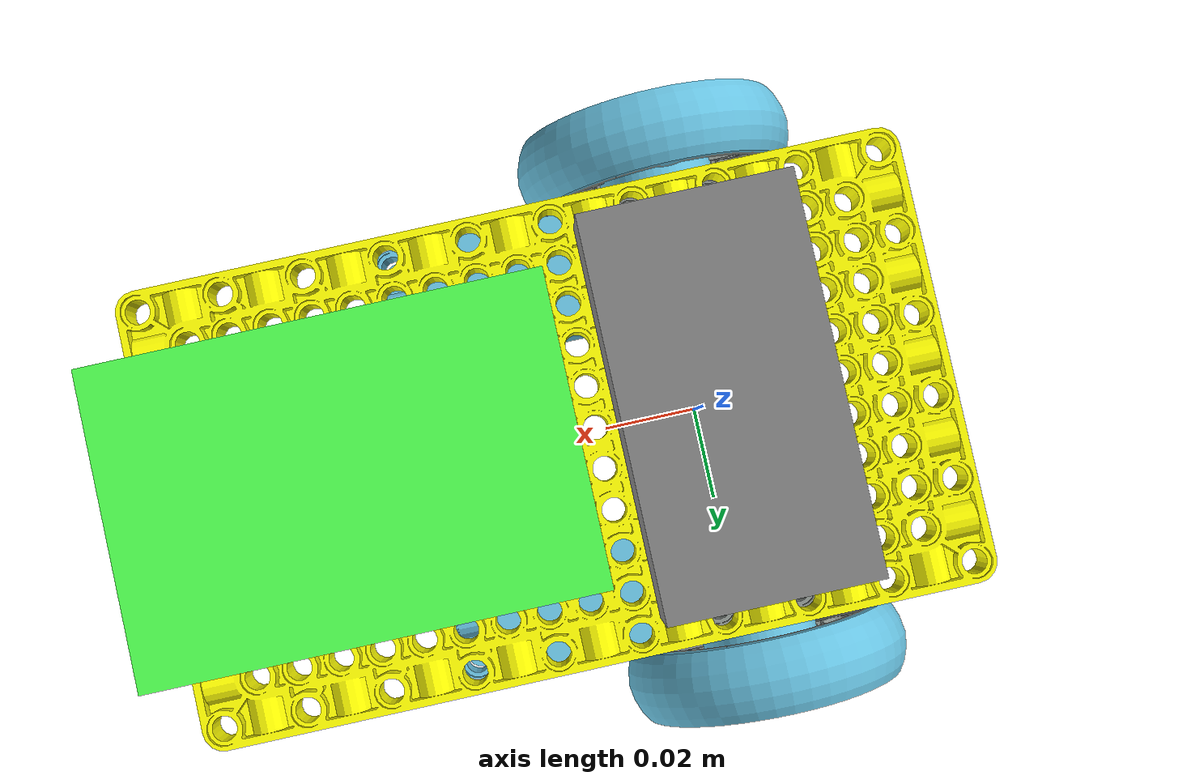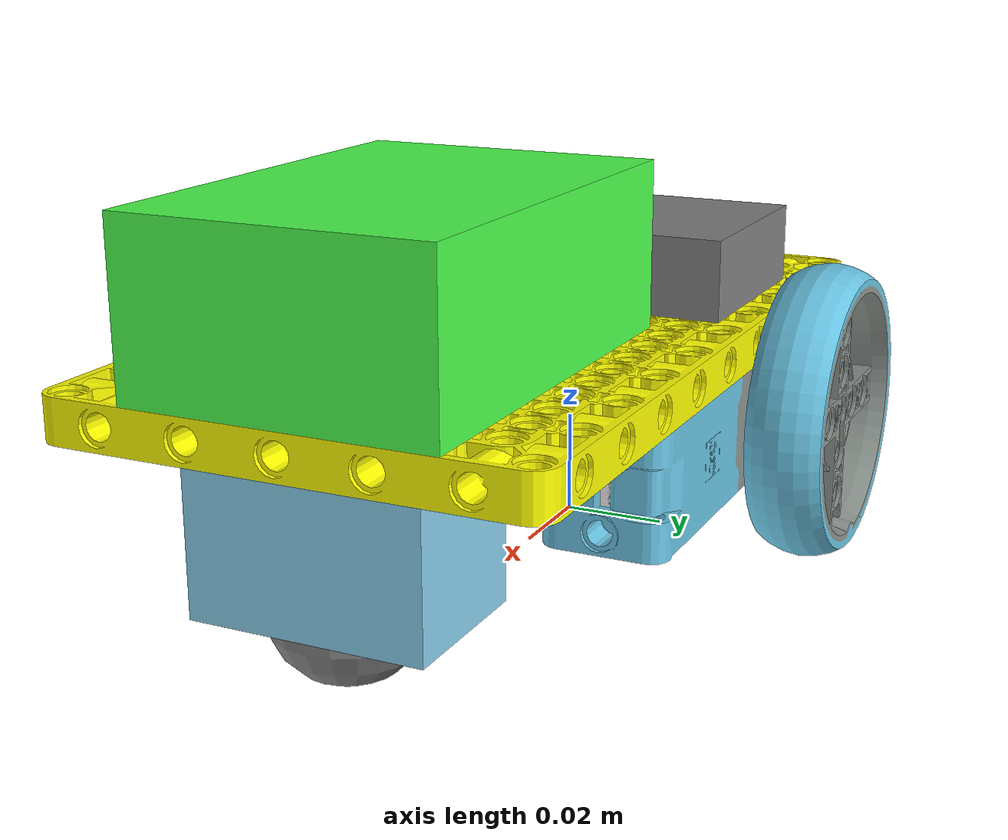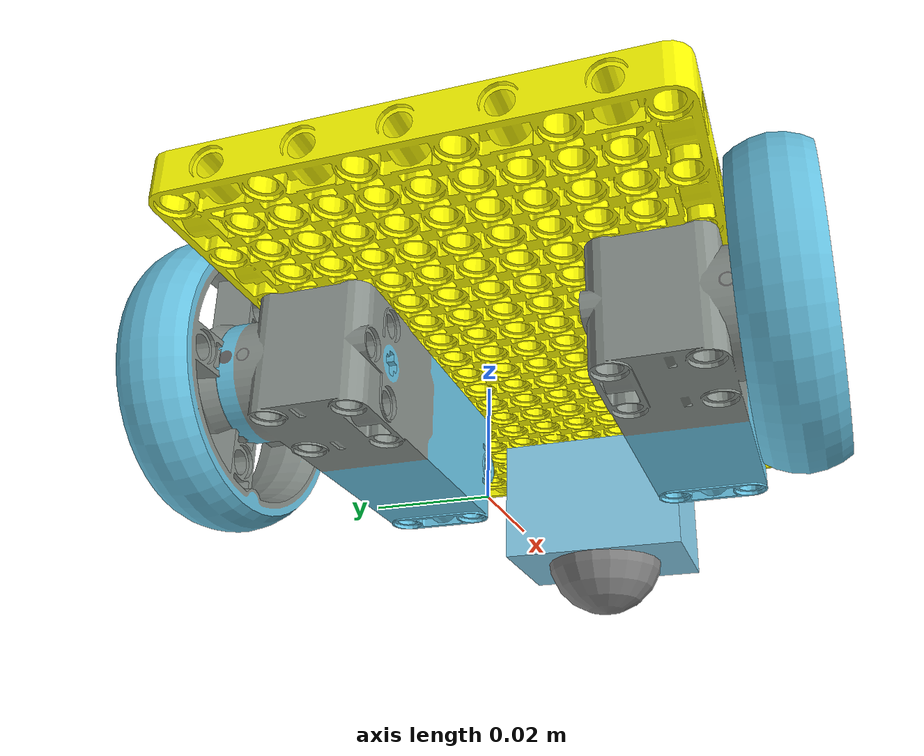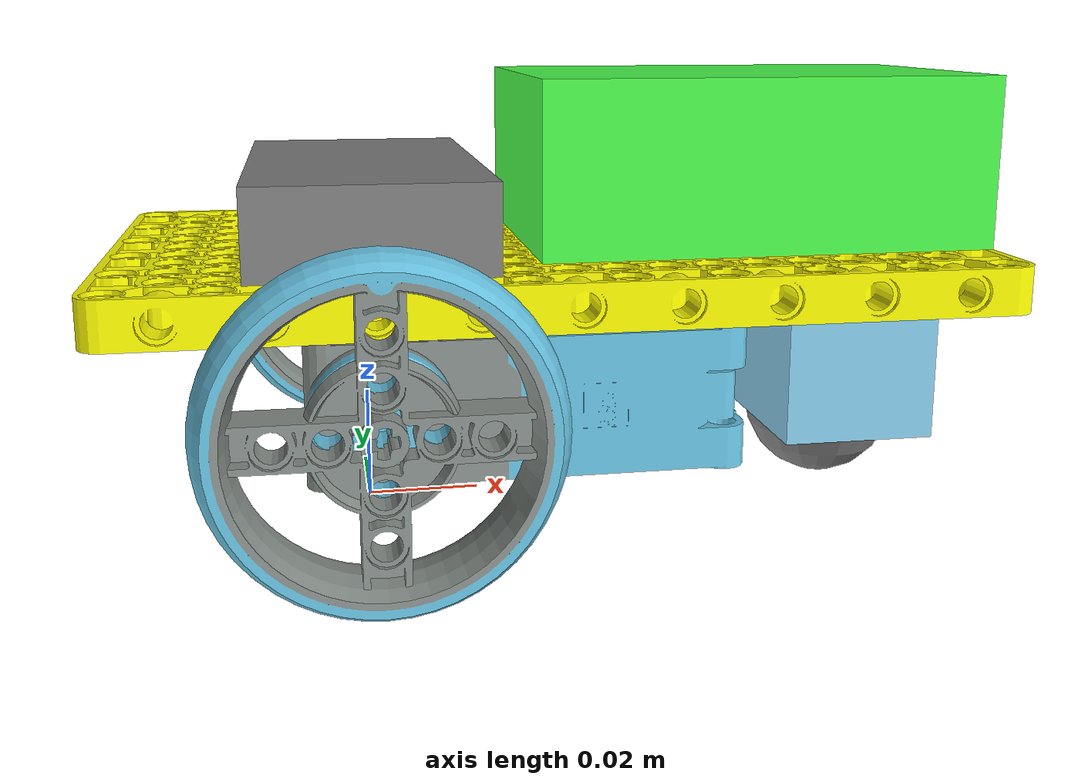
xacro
<?xml version="1.0"?>
<robot name="lego_diffdrive" xmlns:xacro="http://www.ros.org/wiki/xacro">

    <xacro:arg name="namespace"        default=""/>
    <xacro:property name="namespace"   value="$(arg namespace)"/>

    <xacro:arg name="setup"        default="gz"/>
    <xacro:property name="setup"   value="$(arg setup)"/>

    <xacro:arg name="pkg_prefix"        default=""/>
    <xacro:property name="pkg_prefix"   value="$(arg pkg_prefix)"/>

    <xacro:include filename="body/common_properties.xacro" />
    <xacro:include filename="body/mobile_base.xacro" />

    <!-- simulation with ros2_control: controller manager runs inside gazebo -->
    <xacro:if value="${setup == 'gz'}">
        <xacro:include filename="control/ros2_gz_control.xacro" />
    </xacro:if>

    <!-- real hardware with ros2_control: build hat hardware interface -->
    <xacro:if value="${setup == 'hw'}">
        <xacro:arg name="serial_port"        default="/dev/ttyAMA0"/>
        <xacro:property name="serial_port"   value="$(arg serial_port)"/>

        <xacro:include filename="control/ros2_hw_control.xacro" />
    </xacro:if>

</robot>

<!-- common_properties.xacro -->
<robot xmlns:xacro="http://www.ros.org/wiki/xacro">

    <xacro:property name="plate_mass" value="0.010" />
    <xacro:property name="plate_length" value="0.152" />
    <xacro:property name="plate_width" value="0.088" />
    <xacro:property name="plate_height" value="0.008" />
    <xacro:property name="plate_offset_z" value="0.012" />
    <xacro:property name="plate_offset_x" value="0.032" />
    <xacro:property name="caster_wheel_offset" value="0.088" />
    <xacro:property name="wheel_mass" value="0.010" />
    <xacro:property name="wheel_radius" value="0.028" />
    <xacro:property name="wheel_length" value="0.014" />
    <xacro:property name="caster_mass" value="0.002" />
    <xacro:property name="caster_radius" value="${wheel_radius/2}" />
    <xacro:property name="motor_mass" value="0.075" />
    <xacro:property name="motor_wheel_offset_x" value="0.0195" />
    <xacro:property name="motor_wheel_offset_y" value="0.008" />
    <xacro:property name="motor_length" value="0.071" />
    <xacro:property name="motor_width" value="0.023" />
    <xacro:property name="motor_height" value="0.023" />
    <xacro:property name="pi_mass" value="0.050" />
    <xacro:property name="pi_length" value="0.080" />
    <xacro:property name="pi_width" value="0.055" />
    <xacro:property name="pi_height" value="0.030" />
    <xacro:property name="battery_mass" value="0.050" />
    <xacro:property name="battery_length" value="0.040" />
    <xacro:property name="battery_width" value="0.075" />
    <xacro:property name="battery_height" value="0.015" />

    <material name="blue">
        <color rgba="0 0 0.5 1" />
    </material>

    <material name="grey">
        <color rgba="0.5 0.5 0.5 1" />
    </material>

    <material name="yellow">
        <color rgba="1 1 0 1" />
    </material>

    <material name="green">
        <color rgba="0.3 1 0.3 1" />
    </material>

    <material name="sky_blue">
        <color rgba="0.529 0.808 0.922 1" />
    </material>

    <xacro:macro name="box_inertia" params="mass length width height">
        <inertia
            ixx="${mass / 12.0 * (length*length + height*height)}"
            iyy="${mass / 12.0 * (height*height + width*width)}"
            izz="${mass / 12.0 * (width*width   + length*length)}"
            ixy="0.0" ixz="0.0" iyz="0.0" />
    </xacro:macro>

    <xacro:macro name="surface_friction" params="link mu1 mu2">
        <gazebo reference="${link}">
            <mu1>${mu1}</mu1>
            <mu2>${mu2}</mu2>
        </gazebo>
    </xacro:macro>

</robot>

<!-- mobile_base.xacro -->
<robot xmlns:xacro="http://www.ros.org/wiki/xacro">

    <link name="base_link" />
    <link name="center_link">
        <inertial name="center_link_inertia">
            <mass value="0.0" />
            <inertia ixx="0.0" iyy="0.0" izz="0.0"
                     ixy="0.0" ixz="0.0" iyz="0.0" />
        </inertial>
    </link>

    <link name="plate_link">
        <visual>
            <geometry>
                <!--The base plate mesh is 7MB - we could save on ressources by just using a featureless plate instead-->
                <mesh filename="package://${pkg_prefix}_description/meshes/lego/plate_11x19x1.dae" scale="1 1 1" />
                <!-- Width and length flipped here? -->
            </geometry>
            <origin xyz="0 0 ${plate_height / 2.0}" rpy="0 0 ${pi / 2.0}" />
            <material name="yellow" />
        </visual>
        <collision>
            <geometry>
                <box size="${plate_length} ${plate_width} ${plate_height}" />
            </geometry>
        </collision>
        <inertial name="plate_link_inertia">
            <mass value="${plate_mass}" />
            <xacro:box_inertia mass="${plate_mass}" length="${plate_length}" width="${plate_width}" height="${plate_height}" />
            <origin xyz="0 0 ${plate_height / 2.0}" />
        </inertial>
    </link>

    <link name="pi_link">
        <visual>
            <geometry>
                <box size="${pi_length} ${pi_width} ${pi_height}" />
            </geometry>
            <material name="green" />
        </visual>
        <collision>
            <geometry>
                <box size="${pi_length} ${pi_width} ${pi_height}" />
            </geometry>
        </collision>
        <inertial name="pi_link_inertia">
            <mass value="${pi_mass}" />
            <xacro:box_inertia mass="${pi_mass}" length="${pi_length}" width="${pi_width}" height="${pi_height}" />
        </inertial>
    </link>

    <link name="battery_link">
        <visual>
            <geometry>
                <box size="${battery_length} ${battery_width} ${battery_height}" />
            </geometry>
            <material name="grey" />
        </visual>
        <collision>
            <geometry>
                <box size="${battery_length} ${battery_width} ${battery_height}" />
            </geometry>
        </collision>
        <inertial name="battery_link_inertia">
            <mass value="${battery_mass}" />
            <xacro:box_inertia mass="${battery_mass}" length="${battery_length}" width="${battery_width}" height="${battery_height}" />
        </inertial>
    </link>

    <link name="caster_housing_link">
        <visual>
            <geometry>
                <box size="${wheel_radius} ${wheel_radius * 1.5} ${wheel_radius}" />
            </geometry>
            <material name="sky_blue" />
            <origin xyz="0 0 -${wheel_radius/2.0}" rpy="0 0 0" />
        </visual>
    </link>

    <link name="caster_wheel_link">
        <visual>
            <geometry>
                <sphere radius="${caster_radius}" />
            </geometry>
            <material name="grey" />
        </visual>
        <collision>
            <geometry>
                <sphere radius="${caster_radius}" />
            </geometry>
        </collision>
        <inertial name="caster_wheel_link_inertia">
            <mass value="${caster_mass}" />
            <inertia
                ixx="${2.0/5.0 * caster_mass * caster_radius*caster_radius}"
                iyy="${2.0/5.0 * caster_mass * caster_radius*caster_radius}"
                izz="${2.0/5.0 * caster_mass * caster_radius*caster_radius}"
                ixy="0.0" ixz="0.0" iyz="0.0" />
        </inertial>
    </link>
    <xacro:surface_friction link="caster_wheel_link" mu1="0.0001" mu2="0.0001" />

    <xacro:macro name="wheel_assembly" params="prefix mirror_wheel">
        <link name="${prefix}_motor_link">
            <visual>
                <geometry>
                    <mesh filename="package://${pkg_prefix}_description/meshes/lego/medium_motor.dae" scale="1 1 1" />
                </geometry>
            </visual>
            <collision>
                <geometry>
                    <box size="${motor_length} ${motor_width} ${motor_height}" />
                </geometry>
            </collision>
            <inertial name="${prefix}_motor_link_inertia">
                <mass value="${motor_mass}" />
                <xacro:box_inertia mass="${motor_mass}" length="${motor_length}" width="${motor_width}" height="${motor_height}" />
            </inertial>
        </link>

        <link name="${prefix}_wheel_link">
            <visual>
                <geometry>
                    <mesh filename="package://${pkg_prefix}_description/meshes/lego/wheel.dae" scale="1 1 1" />
                </geometry>
            </visual>
            <collision>
                <geometry>
                    <cylinder radius="${wheel_radius}" length="${wheel_length}" />
                </geometry>
            </collision>
            <inertial name="${prefix}_wheel_link_inertia">
                <mass value="${wheel_mass}" />
                <inertia
                    ixx="${wheel_mass / 12.0 * (3*wheel_radius*wheel_radius + wheel_length*wheel_length)}"
                    iyy="${wheel_mass / 12.0 * (3*wheel_radius*wheel_radius + wheel_length*wheel_length)}"
                    izz="${wheel_mass / 2.0  * wheel_radius*wheel_radius}"
                    ixy="0.0" ixz="0.0" iyz="0.0" />
            </inertial>
        </link>
        <xacro:surface_friction link="${prefix}_wheel_link" mu1="1.3" mu2="1.3" />

        <joint name="${prefix}_motor_wheel_joint" type="continuous">
            <parent link="${prefix}_motor_link" />
            <child link="${prefix}_wheel_link" />
            <origin xyz="${motor_wheel_offset_x} -${motor_width / 2.0 + motor_wheel_offset_y} 0" rpy="${pi / 2.0} 0 ${mirror_wheel*pi}" />
            <axis xyz="0 0 1" />
        </joint>
    </xacro:macro>

    <xacro:wheel_assembly prefix="right" mirror_wheel="1" />
    <xacro:wheel_assembly prefix="left"  mirror_wheel="0" />

    <joint name="center_joint" type="fixed">
        <parent link="base_link" />
        <child link="center_link" />
        <origin xyz="0 0 ${wheel_radius}" rpy="0 0 0"/>
    </joint>

    <joint name="center_plate_joint" type="fixed">
        <parent link="center_link" />
        <child link="plate_link" />
        <origin xyz="${plate_offset_x} 0 ${plate_offset_z}" rpy="0 0 0"/>
    </joint>

    <joint name="plate_pi_joint" type="fixed">
        <parent link="plate_link" />
        <child link="pi_link" />
        <origin xyz="${(plate_length - pi_length)/2.0} 0 ${plate_height + pi_height/2.0}" rpy="0 0 0"/>
    </joint>

    <joint name="plate_battery_joint" type="fixed">
        <parent link="plate_link" />
        <child link="battery_link" />
        <origin xyz="${(plate_length/2.0 - pi_length) - (battery_length/2.0) - 0.008} 0 ${plate_height + battery_height/2.0}" rpy="0 0 0"/>
    </joint>

    <joint name="center_right_motor_joint" type="fixed">
        <parent link="center_link" />
        <child link="right_motor_link" />
        <origin xyz="${motor_wheel_offset_x} ${-(plate_width - motor_width) / 2.0} 0" rpy="0 ${pi} 0" />
    </joint>

    <joint name="center_left_motor_joint" type="fixed">
        <parent link="center_link" />
        <child link="left_motor_link" />
        <origin xyz="${motor_wheel_offset_x} ${(plate_width - motor_width) / 2.0} 0" rpy="${pi} ${pi} 0" />
    </joint>

    <joint name="plate_caster_housing_joint" type="fixed">
        <parent link="plate_link" />
        <child link="caster_housing_link" />
        <origin xyz="${-plate_offset_x + caster_wheel_offset} 0 0" rpy="0 0 0" />
    </joint>

    <joint name="center_caster_wheel_joint" type="fixed">
        <parent link="center_link" />
        <child link="caster_wheel_link" />
        <origin xyz="${caster_wheel_offset} 0 ${-wheel_radius / 2.0}" rpy="0 0 0" />
    </joint>

</robot>
